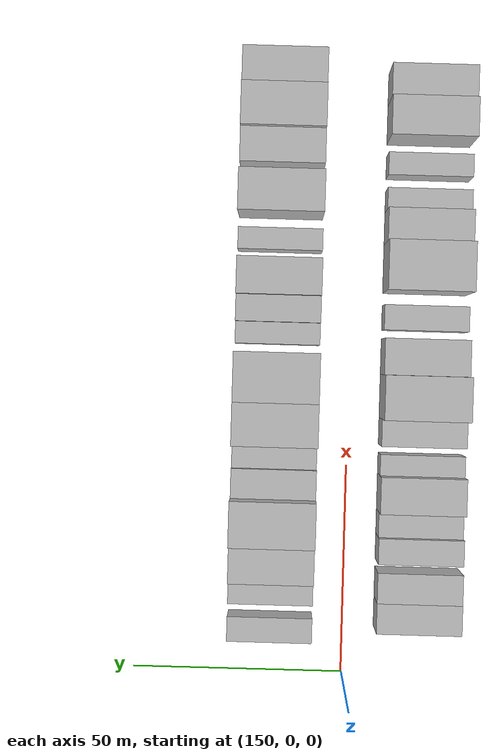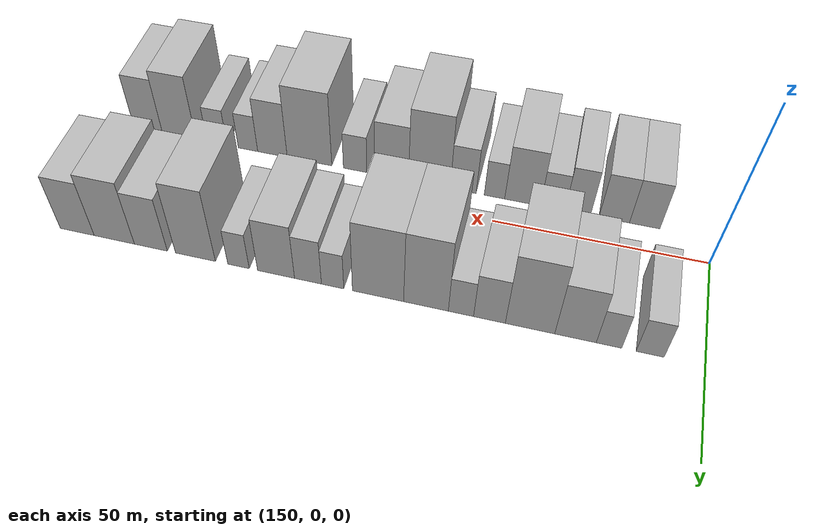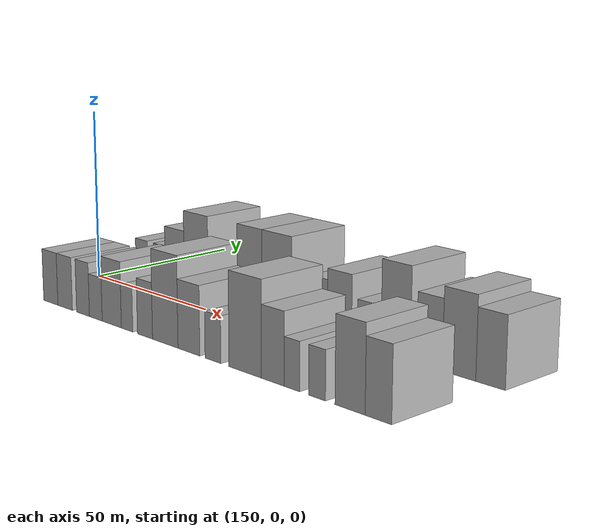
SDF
<sdf version="1.6">
 <world name="default">
  <model name="building_16">
   <static>1</static>
   <pose>161.3831 17.5000 0 0.000000 0.000000 1.570796</pose>
   <link name="link">
    <pose>0 0 6.00 0 0 0</pose>
    <collision name="collision"><geometry><box><size>20.0000 5.8283 12.0000</size></box></geometry></collision>
    <visual name="visual">
     <cast_shadows>0</cast_shadows>
     <geometry><box><size>20.0000 5.8283 12.0000</size></box></geometry>
     <material>
      <script>
       <uri>model://HANNAS_wall/materials/scripts</uri>
       <uri>model://HANNAS_wall/materials/textures</uri>
       <name>vrc/HANNAS_wall</name>
      </script>
     </material>
    </visual>
   </link>
  </model>
  <model name="building_17">
   <static>1</static>
   <pose>169.9986 17.5000 0 0.000000 0.000000 1.570796</pose>
   <link name="link">
    <pose>0 0 6.00 0 0 0</pose>
    <collision name="collision"><geometry><box><size>20.0000 5.4027 12.0000</size></box></geometry></collision>
    <visual name="visual">
     <cast_shadows>0</cast_shadows>
     <geometry><box><size>20.0000 5.4027 12.0000</size></box></geometry>
     <material>
      <script>
       <uri>model://HANNAS_wall/materials/scripts</uri>
       <uri>model://HANNAS_wall/materials/textures</uri>
       <name>vrc/HANNAS_wall</name>
      </script>
     </material>
    </visual>
   </link>
  </model>
  <model name="building_18">
   <static>1</static>
   <pose>177.1372 17.5000 0 0.000000 0.000000 1.570796</pose>
   <link name="link">
    <pose>0 0 9.00 0 0 0</pose>
    <collision name="collision"><geometry><box><size>20.0000 8.8744 18.0000</size></box></geometry></collision>
    <visual name="visual">
     <cast_shadows>0</cast_shadows>
     <geometry><box><size>20.0000 8.8744 18.0000</size></box></geometry>
     <material>
      <script>
       <uri>model://HANNAS_wall/materials/scripts</uri>
       <uri>model://HANNAS_wall/materials/textures</uri>
       <name>vrc/HANNAS_wall</name>
      </script>
     </material>
    </visual>
   </link>
  </model>
  <model name="building_19">
   <static>1</static>
   <pose>186.9321 17.5000 0 0.000000 0.000000 1.570796</pose>
   <link name="link">
    <pose>0 0 12.00 0 0 0</pose>
    <collision name="collision"><geometry><box><size>20.0000 10.7153 24.0000</size></box></geometry></collision>
    <visual name="visual">
     <cast_shadows>0</cast_shadows>
     <geometry><box><size>20.0000 10.7153 24.0000</size></box></geometry>
     <material>
      <script>
       <uri>model://HANNAS_wall/materials/scripts</uri>
       <uri>model://HANNAS_wall/materials/textures</uri>
       <name>vrc/HANNAS_wall</name>
      </script>
     </material>
    </visual>
   </link>
  </model>
  <model name="building_20">
   <static>1</static>
   <pose>195.7815 17.5000 0 0.000000 0.000000 1.570796</pose>
   <link name="link">
    <pose>0 0 7.50 0 0 0</pose>
    <collision name="collision"><geometry><box><size>20.0000 6.9834 15.0000</size></box></geometry></collision>
    <visual name="visual">
     <cast_shadows>0</cast_shadows>
     <geometry><box><size>20.0000 6.9834 15.0000</size></box></geometry>
     <material>
      <script>
       <uri>model://HANNAS_wall/materials/scripts</uri>
       <uri>model://HANNAS_wall/materials/textures</uri>
       <name>vrc/HANNAS_wall</name>
      </script>
     </material>
    </visual>
   </link>
  </model>
  <model name="building_21">
   <static>1</static>
   <pose>202.0707 17.5000 0 0.000000 0.000000 1.570796</pose>
   <link name="link">
    <pose>0 0 6.00 0 0 0</pose>
    <collision name="collision"><geometry><box><size>20.0000 5.5950 12.0000</size></box></geometry></collision>
    <visual name="visual">
     <cast_shadows>0</cast_shadows>
     <geometry><box><size>20.0000 5.5950 12.0000</size></box></geometry>
     <material>
      <script>
       <uri>model://HANNAS_wall/materials/scripts</uri>
       <uri>model://HANNAS_wall/materials/textures</uri>
       <name>vrc/HANNAS_wall</name>
      </script>
     </material>
    </visual>
   </link>
  </model>
  <model name="building_22">
   <static>1</static>
   <pose>209.8988 17.5000 0 0.000000 0.000000 1.570796</pose>
   <link name="link">
    <pose>0 0 12.00 0 0 0</pose>
    <collision name="collision"><geometry><box><size>20.0000 10.0612 24.0000</size></box></geometry></collision>
    <visual name="visual">
     <cast_shadows>0</cast_shadows>
     <geometry><box><size>20.0000 10.0612 24.0000</size></box></geometry>
     <material>
      <script>
       <uri>model://HANNAS_wall/materials/scripts</uri>
       <uri>model://HANNAS_wall/materials/textures</uri>
       <name>vrc/HANNAS_wall</name>
      </script>
     </material>
    </visual>
   </link>
  </model>
  <model name="building_23">
   <static>1</static>
   <pose>220.7700 17.5000 0 0.000000 0.000000 1.570796</pose>
   <link name="link">
    <pose>0 0 12.00 0 0 0</pose>
    <collision name="collision"><geometry><box><size>20.0000 11.6812 24.0000</size></box></geometry></collision>
    <visual name="visual">
     <cast_shadows>0</cast_shadows>
     <geometry><box><size>20.0000 11.6812 24.0000</size></box></geometry>
     <material>
      <script>
       <uri>model://HANNAS_wall/materials/scripts</uri>
       <uri>model://HANNAS_wall/materials/textures</uri>
       <name>vrc/HANNAS_wall</name>
      </script>
     </material>
    </visual>
   </link>
  </model>
  <model name="building_24">
   <static>1</static>
   <pose>231.2007 17.5000 0 0.000000 0.000000 1.570796</pose>
   <link name="link">
    <pose>0 0 6.00 0 0 0</pose>
    <collision name="collision"><geometry><box><size>20.0000 5.1802 12.0000</size></box></geometry></collision>
    <visual name="visual">
     <cast_shadows>0</cast_shadows>
     <geometry><box><size>20.0000 5.1802 12.0000</size></box></geometry>
     <material>
      <script>
       <uri>model://HANNAS_wall/materials/scripts</uri>
       <uri>model://HANNAS_wall/materials/textures</uri>
       <name>vrc/HANNAS_wall</name>
      </script>
     </material>
    </visual>
   </link>
  </model>
  <model name="building_25">
   <static>1</static>
   <pose>236.9427 17.5000 0 0.000000 0.000000 1.570796</pose>
   <link name="link">
    <pose>0 0 7.50 0 0 0</pose>
    <collision name="collision"><geometry><box><size>20.0000 6.3038 15.0000</size></box></geometry></collision>
    <visual name="visual">
     <cast_shadows>0</cast_shadows>
     <geometry><box><size>20.0000 6.3038 15.0000</size></box></geometry>
     <material>
      <script>
       <uri>model://HANNAS_wall/materials/scripts</uri>
       <uri>model://HANNAS_wall/materials/textures</uri>
       <name>vrc/HANNAS_wall</name>
      </script>
     </material>
    </visual>
   </link>
  </model>
  <model name="building_26">
   <static>1</static>
   <pose>244.4711 17.5000 0 0.000000 0.000000 1.570796</pose>
   <link name="link">
    <pose>0 0 9.00 0 0 0</pose>
    <collision name="collision"><geometry><box><size>20.0000 8.7531 18.0000</size></box></geometry></collision>
    <visual name="visual">
     <cast_shadows>0</cast_shadows>
     <geometry><box><size>20.0000 8.7531 18.0000</size></box></geometry>
     <material>
      <script>
       <uri>model://HANNAS_wall/materials/scripts</uri>
       <uri>model://HANNAS_wall/materials/textures</uri>
       <name>vrc/HANNAS_wall</name>
      </script>
     </material>
    </visual>
   </link>
  </model>
  <model name="building_27">
   <static>1</static>
   <pose>253.4204 17.5000 0 0.000000 0.000000 1.570796</pose>
   <link name="link">
    <pose>0 0 6.00 0 0 0</pose>
    <collision name="collision"><geometry><box><size>20.0000 5.1455 12.0000</size></box></geometry></collision>
    <visual name="visual">
     <cast_shadows>0</cast_shadows>
     <geometry><box><size>20.0000 5.1455 12.0000</size></box></geometry>
     <material>
      <script>
       <uri>model://HANNAS_wall/materials/scripts</uri>
       <uri>model://HANNAS_wall/materials/textures</uri>
       <name>vrc/HANNAS_wall</name>
      </script>
     </material>
    </visual>
   </link>
  </model>
  <model name="building_28">
   <static>1</static>
   <pose>263.8647 17.5000 0 0.000000 0.000000 1.570796</pose>
   <link name="link">
    <pose>0 0 12.00 0 0 0</pose>
    <collision name="collision"><geometry><box><size>20.0000 9.7432 24.0000</size></box></geometry></collision>
    <visual name="visual">
     <cast_shadows>0</cast_shadows>
     <geometry><box><size>20.0000 9.7432 24.0000</size></box></geometry>
     <material>
      <script>
       <uri>model://HANNAS_wall/materials/scripts</uri>
       <uri>model://HANNAS_wall/materials/textures</uri>
       <name>vrc/HANNAS_wall</name>
      </script>
     </material>
    </visual>
   </link>
  </model>
  <model name="building_29">
   <static>1</static>
   <pose>274.8220 17.5000 0 0.000000 0.000000 1.570796</pose>
   <link name="link">
    <pose>0 0 9.00 0 0 0</pose>
    <collision name="collision"><geometry><box><size>20.0000 8.1714 18.0000</size></box></geometry></collision>
    <visual name="visual">
     <cast_shadows>0</cast_shadows>
     <geometry><box><size>20.0000 8.1714 18.0000</size></box></geometry>
     <material>
      <script>
       <uri>model://HANNAS_wall/materials/scripts</uri>
       <uri>model://HANNAS_wall/materials/textures</uri>
       <name>vrc/HANNAS_wall</name>
      </script>
     </material>
    </visual>
   </link>
  </model>
  <model name="building_30">
   <static>1</static>
   <pose>283.9643 17.5000 0 0.000000 0.000000 1.570796</pose>
   <link name="link">
    <pose>0 0 10.50 0 0 0</pose>
    <collision name="collision"><geometry><box><size>20.0000 10.1132 21.0000</size></box></geometry></collision>
    <visual name="visual">
     <cast_shadows>0</cast_shadows>
     <geometry><box><size>20.0000 10.1132 21.0000</size></box></geometry>
     <material>
      <script>
       <uri>model://HANNAS_wall/materials/scripts</uri>
       <uri>model://HANNAS_wall/materials/textures</uri>
       <name>vrc/HANNAS_wall</name>
      </script>
     </material>
    </visual>
   </link>
  </model>
  <model name="building_31">
   <static>1</static>
   <pose>293.3305 17.5000 0 0.000000 0.000000 1.570796</pose>
   <link name="link">
    <pose>0 0 9.00 0 0 0</pose>
    <collision name="collision"><geometry><box><size>20.0000 8.6192 18.0000</size></box></geometry></collision>
    <visual name="visual">
     <cast_shadows>0</cast_shadows>
     <geometry><box><size>20.0000 8.6192 18.0000</size></box></geometry>
     <material>
      <script>
       <uri>model://HANNAS_wall/materials/scripts</uri>
       <uri>model://HANNAS_wall/materials/textures</uri>
       <name>vrc/HANNAS_wall</name>
      </script>
     </material>
    </visual>
   </link>
  </model>
  <model name="building_47">
   <static>1</static>
   <pose>165.1474 -17.5000 0 0.000000 0.000000 1.570796</pose>
   <link name="link">
    <pose>0 0 7.50 0 0 0</pose>
    <collision name="collision"><geometry><box><size>20.0000 7.0821 15.0000</size></box></geometry></collision>
    <visual name="visual">
     <cast_shadows>0</cast_shadows>
     <geometry><box><size>20.0000 7.0821 15.0000</size></box></geometry>
     <material>
      <script>
       <uri>model://HANNAS_wall/materials/scripts</uri>
       <uri>model://HANNAS_wall/materials/textures</uri>
       <name>vrc/HANNAS_wall</name>
      </script>
     </material>
    </visual>
   </link>
  </model>
  <model name="building_48">
   <static>1</static>
   <pose>172.2481 -17.5000 0 0.000000 0.000000 1.570796</pose>
   <link name="link">
    <pose>0 0 7.50 0 0 0</pose>
    <collision name="collision"><geometry><box><size>20.0000 7.1193 15.0000</size></box></geometry></collision>
    <visual name="visual">
     <cast_shadows>0</cast_shadows>
     <geometry><box><size>20.0000 7.1193 15.0000</size></box></geometry>
     <material>
      <script>
       <uri>model://HANNAS_wall/materials/scripts</uri>
       <uri>model://HANNAS_wall/materials/textures</uri>
       <name>vrc/HANNAS_wall</name>
      </script>
     </material>
    </visual>
   </link>
  </model>
  <model name="building_49">
   <static>1</static>
   <pose>180.8429 -17.5000 0 0.000000 0.000000 1.570796</pose>
   <link name="link">
    <pose>0 0 7.50 0 0 0</pose>
    <collision name="collision"><geometry><box><size>20.0000 6.0702 15.0000</size></box></geometry></collision>
    <visual name="visual">
     <cast_shadows>0</cast_shadows>
     <geometry><box><size>20.0000 6.0702 15.0000</size></box></geometry>
     <material>
      <script>
       <uri>model://HANNAS_wall/materials/scripts</uri>
       <uri>model://HANNAS_wall/materials/textures</uri>
       <name>vrc/HANNAS_wall</name>
      </script>
     </material>
    </visual>
   </link>
  </model>
  <model name="building_50">
   <static>1</static>
   <pose>186.8182 -17.5000 0 0.000000 0.000000 1.570796</pose>
   <link name="link">
    <pose>0 0 6.00 0 0 0</pose>
    <collision name="collision"><geometry><box><size>20.0000 5.8804 12.0000</size></box></geometry></collision>
    <visual name="visual">
     <cast_shadows>0</cast_shadows>
     <geometry><box><size>20.0000 5.8804 12.0000</size></box></geometry>
     <material>
      <script>
       <uri>model://HANNAS_wall/materials/scripts</uri>
       <uri>model://HANNAS_wall/materials/textures</uri>
       <name>vrc/HANNAS_wall</name>
      </script>
     </material>
    </visual>
   </link>
  </model>
  <model name="building_51">
   <static>1</static>
   <pose>194.0684 -17.5000 0 0.000000 0.000000 1.570796</pose>
   <link name="link">
    <pose>0 0 9.00 0 0 0</pose>
    <collision name="collision"><geometry><box><size>20.0000 8.6200 18.0000</size></box></geometry></collision>
    <visual name="visual">
     <cast_shadows>0</cast_shadows>
     <geometry><box><size>20.0000 8.6200 18.0000</size></box></geometry>
     <material>
      <script>
       <uri>model://HANNAS_wall/materials/scripts</uri>
       <uri>model://HANNAS_wall/materials/textures</uri>
       <name>vrc/HANNAS_wall</name>
      </script>
     </material>
    </visual>
   </link>
  </model>
  <model name="building_52">
   <static>1</static>
   <pose>200.8702 -17.5000 0 0.000000 0.000000 1.570796</pose>
   <link name="link">
    <pose>0 0 6.00 0 0 0</pose>
    <collision name="collision"><geometry><box><size>20.0000 4.9835 12.0000</size></box></geometry></collision>
    <visual name="visual">
     <cast_shadows>0</cast_shadows>
     <geometry><box><size>20.0000 4.9835 12.0000</size></box></geometry>
     <material>
      <script>
       <uri>model://HANNAS_wall/materials/scripts</uri>
       <uri>model://HANNAS_wall/materials/textures</uri>
       <name>vrc/HANNAS_wall</name>
      </script>
     </material>
    </visual>
   </link>
  </model>
  <model name="building_53">
   <static>1</static>
   <pose>208.5510 -17.5000 0 0.000000 0.000000 1.570796</pose>
   <link name="link">
    <pose>0 0 7.50 0 0 0</pose>
    <collision name="collision"><geometry><box><size>20.0000 6.3781 15.0000</size></box></geometry></collision>
    <visual name="visual">
     <cast_shadows>0</cast_shadows>
     <geometry><box><size>20.0000 6.3781 15.0000</size></box></geometry>
     <material>
      <script>
       <uri>model://HANNAS_wall/materials/scripts</uri>
       <uri>model://HANNAS_wall/materials/textures</uri>
       <name>vrc/HANNAS_wall</name>
      </script>
     </material>
    </visual>
   </link>
  </model>
  <model name="building_54">
   <static>1</static>
   <pose>216.9465 -17.5000 0 0.000000 0.000000 1.570796</pose>
   <link name="link">
    <pose>0 0 12.00 0 0 0</pose>
    <collision name="collision"><geometry><box><size>20.0000 10.4130 24.0000</size></box></geometry></collision>
    <visual name="visual">
     <cast_shadows>0</cast_shadows>
     <geometry><box><size>20.0000 10.4130 24.0000</size></box></geometry>
     <material>
      <script>
       <uri>model://HANNAS_wall/materials/scripts</uri>
       <uri>model://HANNAS_wall/materials/textures</uri>
       <name>vrc/HANNAS_wall</name>
      </script>
     </material>
    </visual>
   </link>
  </model>
  <model name="building_55">
   <static>1</static>
   <pose>226.4328 -17.5000 0 0.000000 0.000000 1.570796</pose>
   <link name="link">
    <pose>0 0 9.00 0 0 0</pose>
    <collision name="collision"><geometry><box><size>20.0000 8.5596 18.0000</size></box></geometry></collision>
    <visual name="visual">
     <cast_shadows>0</cast_shadows>
     <geometry><box><size>20.0000 8.5596 18.0000</size></box></geometry>
     <material>
      <script>
       <uri>model://HANNAS_wall/materials/scripts</uri>
       <uri>model://HANNAS_wall/materials/textures</uri>
       <name>vrc/HANNAS_wall</name>
      </script>
     </material>
    </visual>
   </link>
  </model>
  <model name="building_56">
   <static>1</static>
   <pose>235.6912 -17.5000 0 0.000000 0.000000 1.570796</pose>
   <link name="link">
    <pose>0 0 6.00 0 0 0</pose>
    <collision name="collision"><geometry><box><size>20.0000 5.9573 12.0000</size></box></geometry></collision>
    <visual name="visual">
     <cast_shadows>0</cast_shadows>
     <geometry><box><size>20.0000 5.9573 12.0000</size></box></geometry>
     <material>
      <script>
       <uri>model://HANNAS_wall/materials/scripts</uri>
       <uri>model://HANNAS_wall/materials/textures</uri>
       <name>vrc/HANNAS_wall</name>
      </script>
     </material>
    </visual>
   </link>
  </model>
  <model name="building_57">
   <static>1</static>
   <pose>247.4718 -17.5000 0 0.000000 0.000000 1.570796</pose>
   <link name="link">
    <pose>0 0 12.00 0 0 0</pose>
    <collision name="collision"><geometry><box><size>20.0000 11.6039 24.0000</size></box></geometry></collision>
    <visual name="visual">
     <cast_shadows>0</cast_shadows>
     <geometry><box><size>20.0000 11.6039 24.0000</size></box></geometry>
     <material>
      <script>
       <uri>model://HANNAS_wall/materials/scripts</uri>
       <uri>model://HANNAS_wall/materials/textures</uri>
       <name>vrc/HANNAS_wall</name>
      </script>
     </material>
    </visual>
   </link>
  </model>
  <model name="building_58">
   <static>1</static>
   <pose>257.1645 -17.5000 0 0.000000 0.000000 1.570796</pose>
   <link name="link">
    <pose>0 0 9.00 0 0 0</pose>
    <collision name="collision"><geometry><box><size>20.0000 7.7815 18.0000</size></box></geometry></collision>
    <visual name="visual">
     <cast_shadows>0</cast_shadows>
     <geometry><box><size>20.0000 7.7815 18.0000</size></box></geometry>
     <material>
      <script>
       <uri>model://HANNAS_wall/materials/scripts</uri>
       <uri>model://HANNAS_wall/materials/textures</uri>
       <name>vrc/HANNAS_wall</name>
      </script>
     </material>
    </visual>
   </link>
  </model>
  <model name="building_59">
   <static>1</static>
   <pose>263.6252 -17.5000 0 0.000000 0.000000 1.570796</pose>
   <link name="link">
    <pose>0 0 6.00 0 0 0</pose>
    <collision name="collision"><geometry><box><size>20.0000 5.1400 12.0000</size></box></geometry></collision>
    <visual name="visual">
     <cast_shadows>0</cast_shadows>
     <geometry><box><size>20.0000 5.1400 12.0000</size></box></geometry>
     <material>
      <script>
       <uri>model://HANNAS_wall/materials/scripts</uri>
       <uri>model://HANNAS_wall/materials/textures</uri>
       <name>vrc/HANNAS_wall</name>
      </script>
     </material>
    </visual>
   </link>
  </model>
  <model name="building_60">
   <static>1</static>
   <pose>271.8754 -17.5000 0 0.000000 0.000000 1.570796</pose>
   <link name="link">
    <pose>0 0 6.00 0 0 0</pose>
    <collision name="collision"><geometry><box><size>20.0000 5.3603 12.0000</size></box></geometry></collision>
    <visual name="visual">
     <cast_shadows>0</cast_shadows>
     <geometry><box><size>20.0000 5.3603 12.0000</size></box></geometry>
     <material>
      <script>
       <uri>model://HANNAS_wall/materials/scripts</uri>
       <uri>model://HANNAS_wall/materials/textures</uri>
       <name>vrc/HANNAS_wall</name>
      </script>
     </material>
    </visual>
   </link>
  </model>
  <model name="building_61">
   <static>1</static>
   <pose>282.1498 -17.5000 0 0.000000 0.000000 1.570796</pose>
   <link name="link">
    <pose>0 0 10.50 0 0 0</pose>
    <collision name="collision"><geometry><box><size>20.0000 9.1885 21.0000</size></box></geometry></collision>
    <visual name="visual">
     <cast_shadows>0</cast_shadows>
     <geometry><box><size>20.0000 9.1885 21.0000</size></box></geometry>
     <material>
      <script>
       <uri>model://HANNAS_wall/materials/scripts</uri>
       <uri>model://HANNAS_wall/materials/textures</uri>
       <name>vrc/HANNAS_wall</name>
      </script>
     </material>
    </visual>
   </link>
  </model>
  <model name="building_62">
   <static>1</static>
   <pose>290.6338 -17.5000 0 0.000000 0.000000 1.570796</pose>
   <link name="link">
    <pose>0 0 9.00 0 0 0</pose>
    <collision name="collision"><geometry><box><size>20.0000 7.7795 18.0000</size></box></geometry></collision>
    <visual name="visual">
     <cast_shadows>0</cast_shadows>
     <geometry><box><size>20.0000 7.7795 18.0000</size></box></geometry>
     <material>
      <script>
       <uri>model://HANNAS_wall/materials/scripts</uri>
       <uri>model://HANNAS_wall/materials/textures</uri>
       <name>vrc/HANNAS_wall</name>
      </script>
     </material>
    </visual>
   </link>
  </model>
 </world>
</sdf>
